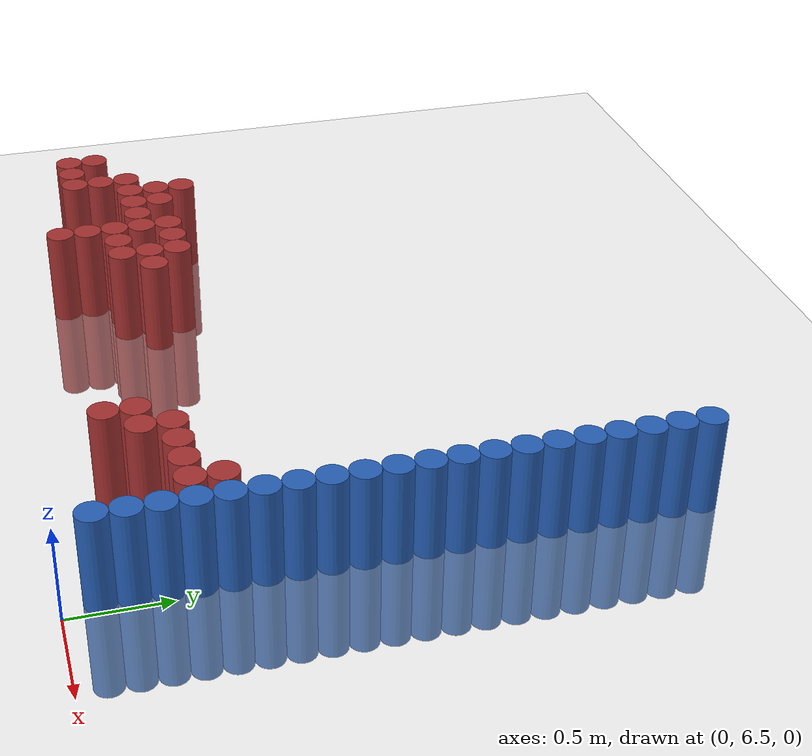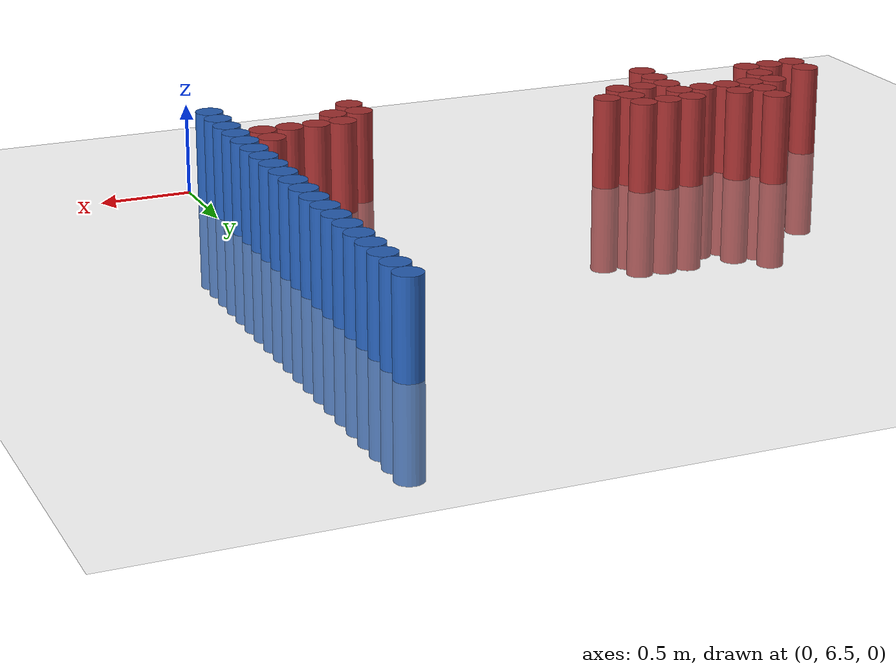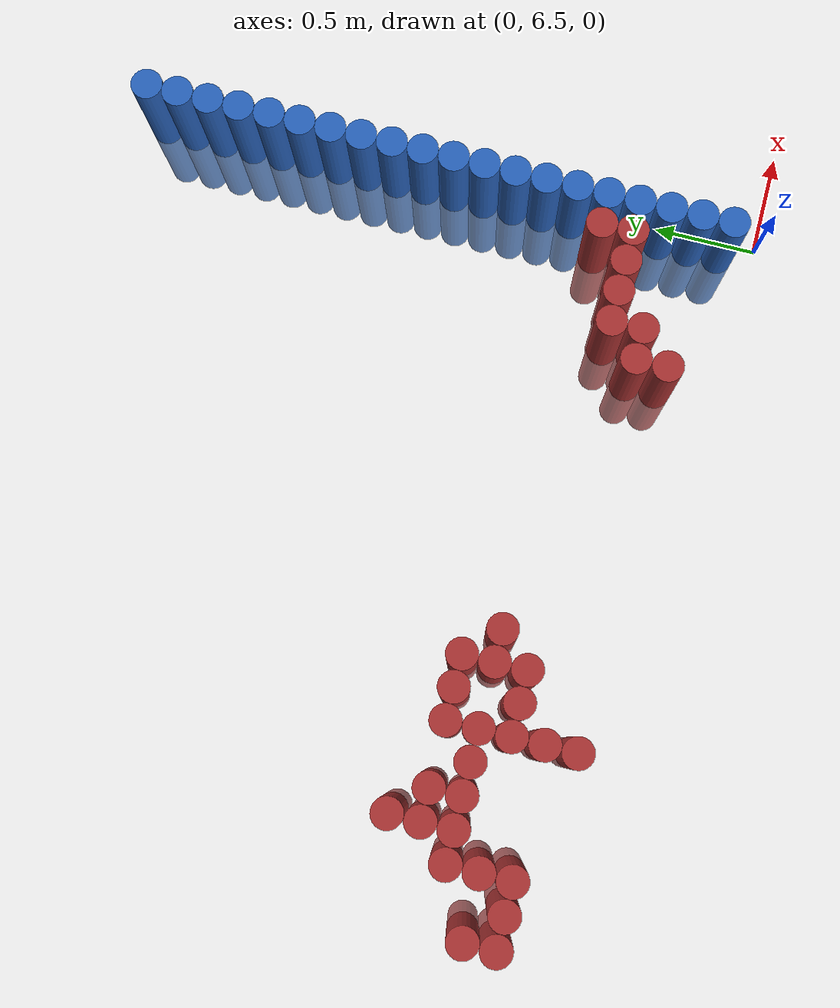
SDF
<sdf version="1.6">
 <world name="default">
  <model name="ground_plane">
   <static>1</static>
   <link name="link">
    <collision name="collision">
     <geometry><plane><normal>0 0 1</normal><size>100 100</size></plane></geometry>
     <surface><friction><ode><mu>100</mu><mu2>50</mu2></ode></friction></surface>
    </collision>
    <visual name="visual">
     <cast_shadows>0</cast_shadows>
     <geometry><plane><normal>0 0 1</normal><size>100 100</size></plane></geometry>
     <material>
      <script><uri>file://media/materials/scripts/gazebo.material</uri><name>Gazebo/Grey</name></script>
     </material>
    </visual>
   </link>
  </model>
  <model name="unit_cylinder_163">
   <static>1</static>
   <pose>-3.525000 6.975000 0.000000 0.000000 0.000000 0.000000</pose>
   <link name="link">
    <inertial>
     <mass>1</mass>
     <inertia><ixx>0.145833</ixx><ixy>0</ixy><ixz>0</ixz><iyy>0.145833</iyy><iyz>0</iyz><izz>0.125</izz></inertia>
    </inertial>
    <collision name="collision">
     <geometry><cylinder><radius>0.075000</radius><length>1</length></cylinder></geometry>
    </collision>
    <visual name="visual">
     <geometry><cylinder><radius>0.075000</radius><length>1</length></cylinder></geometry>
     <material>
      <ambient>0.648000 0.192000 0.192000 1</ambient>
      <diffuse>0.648000 0.192000 0.192000 1</diffuse>
     </material>
     <material>
      <script><name>Gazebo/Grey</name><uri>file://media/materials/scripts/gazebo.material</uri></script>
     </material>
    </visual>
   </link>
  </model>
  <model name="unit_cylinder_164">
   <static>1</static>
   <pose>-3.525000 7.125000 0.000000 0.000000 0.000000 0.000000</pose>
   <link name="link">
    <inertial>
     <mass>1</mass>
     <inertia><ixx>0.145833</ixx><ixy>0</ixy><ixz>0</ixz><iyy>0.145833</iyy><iyz>0</iyz><izz>0.125</izz></inertia>
    </inertial>
    <collision name="collision">
     <geometry><cylinder><radius>0.075000</radius><length>1</length></cylinder></geometry>
    </collision>
    <visual name="visual">
     <geometry><cylinder><radius>0.075000</radius><length>1</length></cylinder></geometry>
     <material>
      <ambient>0.648000 0.192000 0.192000 1</ambient>
      <diffuse>0.648000 0.192000 0.192000 1</diffuse>
     </material>
     <material>
      <script><name>Gazebo/Grey</name><uri>file://media/materials/scripts/gazebo.material</uri></script>
     </material>
    </visual>
   </link>
  </model>
  <model name="unit_cylinder_172">
   <static>1</static>
   <pose>-3.375000 6.975000 0.000000 0.000000 0.000000 0.000000</pose>
   <link name="link">
    <inertial>
     <mass>1</mass>
     <inertia><ixx>0.145833</ixx><ixy>0</ixy><ixz>0</ixz><iyy>0.145833</iyy><iyz>0</iyz><izz>0.125</izz></inertia>
    </inertial>
    <collision name="collision">
     <geometry><cylinder><radius>0.075000</radius><length>1</length></cylinder></geometry>
    </collision>
    <visual name="visual">
     <geometry><cylinder><radius>0.075000</radius><length>1</length></cylinder></geometry>
     <material>
      <ambient>0.648000 0.192000 0.192000 1</ambient>
      <diffuse>0.648000 0.192000 0.192000 1</diffuse>
     </material>
     <material>
      <script><name>Gazebo/Grey</name><uri>file://media/materials/scripts/gazebo.material</uri></script>
     </material>
    </visual>
   </link>
  </model>
  <model name="unit_cylinder_179">
   <static>1</static>
   <pose>-3.225000 6.975000 0.000000 0.000000 0.000000 0.000000</pose>
   <link name="link">
    <inertial>
     <mass>1</mass>
     <inertia><ixx>0.145833</ixx><ixy>0</ixy><ixz>0</ixz><iyy>0.145833</iyy><iyz>0</iyz><izz>0.125</izz></inertia>
    </inertial>
    <collision name="collision">
     <geometry><cylinder><radius>0.075000</radius><length>1</length></cylinder></geometry>
    </collision>
    <visual name="visual">
     <geometry><cylinder><radius>0.075000</radius><length>1</length></cylinder></geometry>
     <material>
      <ambient>0.648000 0.192000 0.192000 1</ambient>
      <diffuse>0.648000 0.192000 0.192000 1</diffuse>
     </material>
     <material>
      <script><name>Gazebo/Grey</name><uri>file://media/materials/scripts/gazebo.material</uri></script>
     </material>
    </visual>
   </link>
  </model>
  <model name="unit_cylinder_180">
   <static>1</static>
   <pose>-3.225000 7.125000 0.000000 0.000000 0.000000 0.000000</pose>
   <link name="link">
    <inertial>
     <mass>1</mass>
     <inertia><ixx>0.145833</ixx><ixy>0</ixy><ixz>0</ixz><iyy>0.145833</iyy><iyz>0</iyz><izz>0.125</izz></inertia>
    </inertial>
    <collision name="collision">
     <geometry><cylinder><radius>0.075000</radius><length>1</length></cylinder></geometry>
    </collision>
    <visual name="visual">
     <geometry><cylinder><radius>0.075000</radius><length>1</length></cylinder></geometry>
     <material>
      <ambient>0.648000 0.192000 0.192000 1</ambient>
      <diffuse>0.648000 0.192000 0.192000 1</diffuse>
     </material>
     <material>
      <script><name>Gazebo/Grey</name><uri>file://media/materials/scripts/gazebo.material</uri></script>
     </material>
    </visual>
   </link>
  </model>
  <model name="unit_cylinder_181">
   <static>1</static>
   <pose>-3.225000 7.275000 0.000000 0.000000 0.000000 0.000000</pose>
   <link name="link">
    <inertial>
     <mass>1</mass>
     <inertia><ixx>0.145833</ixx><ixy>0</ixy><ixz>0</ixz><iyy>0.145833</iyy><iyz>0</iyz><izz>0.125</izz></inertia>
    </inertial>
    <collision name="collision">
     <geometry><cylinder><radius>0.075000</radius><length>1</length></cylinder></geometry>
    </collision>
    <visual name="visual">
     <geometry><cylinder><radius>0.075000</radius><length>1</length></cylinder></geometry>
     <material>
      <ambient>0.648000 0.192000 0.192000 1</ambient>
      <diffuse>0.648000 0.192000 0.192000 1</diffuse>
     </material>
     <material>
      <script><name>Gazebo/Grey</name><uri>file://media/materials/scripts/gazebo.material</uri></script>
     </material>
    </visual>
   </link>
  </model>
  <model name="unit_cylinder_187">
   <static>1</static>
   <pose>-3.075000 7.275000 0.000000 0.000000 0.000000 0.000000</pose>
   <link name="link">
    <inertial>
     <mass>1</mass>
     <inertia><ixx>0.145833</ixx><ixy>0</ixy><ixz>0</ixz><iyy>0.145833</iyy><iyz>0</iyz><izz>0.125</izz></inertia>
    </inertial>
    <collision name="collision">
     <geometry><cylinder><radius>0.075000</radius><length>1</length></cylinder></geometry>
    </collision>
    <visual name="visual">
     <geometry><cylinder><radius>0.075000</radius><length>1</length></cylinder></geometry>
     <material>
      <ambient>0.648000 0.192000 0.192000 1</ambient>
      <diffuse>0.648000 0.192000 0.192000 1</diffuse>
     </material>
     <material>
      <script><name>Gazebo/Grey</name><uri>file://media/materials/scripts/gazebo.material</uri></script>
     </material>
    </visual>
   </link>
  </model>
  <model name="unit_cylinder_188">
   <static>1</static>
   <pose>-3.075000 7.425000 0.000000 0.000000 0.000000 0.000000</pose>
   <link name="link">
    <inertial>
     <mass>1</mass>
     <inertia><ixx>0.145833</ixx><ixy>0</ixy><ixz>0</ixz><iyy>0.145833</iyy><iyz>0</iyz><izz>0.125</izz></inertia>
    </inertial>
    <collision name="collision">
     <geometry><cylinder><radius>0.075000</radius><length>1</length></cylinder></geometry>
    </collision>
    <visual name="visual">
     <geometry><cylinder><radius>0.075000</radius><length>1</length></cylinder></geometry>
     <material>
      <ambient>0.648000 0.192000 0.192000 1</ambient>
      <diffuse>0.648000 0.192000 0.192000 1</diffuse>
     </material>
     <material>
      <script><name>Gazebo/Grey</name><uri>file://media/materials/scripts/gazebo.material</uri></script>
     </material>
    </visual>
   </link>
  </model>
  <model name="unit_cylinder_189">
   <static>1</static>
   <pose>-3.075000 7.575000 0.000000 0.000000 0.000000 0.000000</pose>
   <link name="link">
    <inertial>
     <mass>1</mass>
     <inertia><ixx>0.145833</ixx><ixy>0</ixy><ixz>0</ixz><iyy>0.145833</iyy><iyz>0</iyz><izz>0.125</izz></inertia>
    </inertial>
    <collision name="collision">
     <geometry><cylinder><radius>0.075000</radius><length>1</length></cylinder></geometry>
    </collision>
    <visual name="visual">
     <geometry><cylinder><radius>0.075000</radius><length>1</length></cylinder></geometry>
     <material>
      <ambient>0.648000 0.192000 0.192000 1</ambient>
      <diffuse>0.648000 0.192000 0.192000 1</diffuse>
     </material>
     <material>
      <script><name>Gazebo/Grey</name><uri>file://media/materials/scripts/gazebo.material</uri></script>
     </material>
    </visual>
   </link>
  </model>
  <model name="unit_cylinder_197">
   <static>1</static>
   <pose>-2.925000 7.275000 0.000000 0.000000 0.000000 0.000000</pose>
   <link name="link">
    <inertial>
     <mass>1</mass>
     <inertia><ixx>0.145833</ixx><ixy>0</ixy><ixz>0</ixz><iyy>0.145833</iyy><iyz>0</iyz><izz>0.125</izz></inertia>
    </inertial>
    <collision name="collision">
     <geometry><cylinder><radius>0.075000</radius><length>1</length></cylinder></geometry>
    </collision>
    <visual name="visual">
     <geometry><cylinder><radius>0.075000</radius><length>1</length></cylinder></geometry>
     <material>
      <ambient>0.648000 0.192000 0.192000 1</ambient>
      <diffuse>0.648000 0.192000 0.192000 1</diffuse>
     </material>
     <material>
      <script><name>Gazebo/Grey</name><uri>file://media/materials/scripts/gazebo.material</uri></script>
     </material>
    </visual>
   </link>
  </model>
  <model name="unit_cylinder_198">
   <static>1</static>
   <pose>-2.925000 7.425000 0.000000 0.000000 0.000000 0.000000</pose>
   <link name="link">
    <inertial>
     <mass>1</mass>
     <inertia><ixx>0.145833</ixx><ixy>0</ixy><ixz>0</ixz><iyy>0.145833</iyy><iyz>0</iyz><izz>0.125</izz></inertia>
    </inertial>
    <collision name="collision">
     <geometry><cylinder><radius>0.075000</radius><length>1</length></cylinder></geometry>
    </collision>
    <visual name="visual">
     <geometry><cylinder><radius>0.075000</radius><length>1</length></cylinder></geometry>
     <material>
      <ambient>0.648000 0.192000 0.192000 1</ambient>
      <diffuse>0.648000 0.192000 0.192000 1</diffuse>
     </material>
     <material>
      <script><name>Gazebo/Grey</name><uri>file://media/materials/scripts/gazebo.material</uri></script>
     </material>
    </visual>
   </link>
  </model>
  <model name="unit_cylinder_203">
   <static>1</static>
   <pose>-2.775000 7.275000 0.000000 0.000000 0.000000 0.000000</pose>
   <link name="link">
    <inertial>
     <mass>1</mass>
     <inertia><ixx>0.145833</ixx><ixy>0</ixy><ixz>0</ixz><iyy>0.145833</iyy><iyz>0</iyz><izz>0.125</izz></inertia>
    </inertial>
    <collision name="collision">
     <geometry><cylinder><radius>0.075000</radius><length>1</length></cylinder></geometry>
    </collision>
    <visual name="visual">
     <geometry><cylinder><radius>0.075000</radius><length>1</length></cylinder></geometry>
     <material>
      <ambient>0.648000 0.192000 0.192000 1</ambient>
      <diffuse>0.648000 0.192000 0.192000 1</diffuse>
     </material>
     <material>
      <script><name>Gazebo/Grey</name><uri>file://media/materials/scripts/gazebo.material</uri></script>
     </material>
    </visual>
   </link>
  </model>
  <model name="unit_cylinder_207">
   <static>1</static>
   <pose>-2.625000 6.825000 0.000000 0.000000 0.000000 0.000000</pose>
   <link name="link">
    <inertial>
     <mass>1</mass>
     <inertia><ixx>0.145833</ixx><ixy>0</ixy><ixz>0</ixz><iyy>0.145833</iyy><iyz>0</iyz><izz>0.125</izz></inertia>
    </inertial>
    <collision name="collision">
     <geometry><cylinder><radius>0.075000</radius><length>1</length></cylinder></geometry>
    </collision>
    <visual name="visual">
     <geometry><cylinder><radius>0.075000</radius><length>1</length></cylinder></geometry>
     <material>
      <ambient>0.648000 0.192000 0.192000 1</ambient>
      <diffuse>0.648000 0.192000 0.192000 1</diffuse>
     </material>
     <material>
      <script><name>Gazebo/Grey</name><uri>file://media/materials/scripts/gazebo.material</uri></script>
     </material>
    </visual>
   </link>
  </model>
  <model name="unit_cylinder_208">
   <static>1</static>
   <pose>-2.625000 6.975000 0.000000 0.000000 0.000000 0.000000</pose>
   <link name="link">
    <inertial>
     <mass>1</mass>
     <inertia><ixx>0.145833</ixx><ixy>0</ixy><ixz>0</ixz><iyy>0.145833</iyy><iyz>0</iyz><izz>0.125</izz></inertia>
    </inertial>
    <collision name="collision">
     <geometry><cylinder><radius>0.075000</radius><length>1</length></cylinder></geometry>
    </collision>
    <visual name="visual">
     <geometry><cylinder><radius>0.075000</radius><length>1</length></cylinder></geometry>
     <material>
      <ambient>0.648000 0.192000 0.192000 1</ambient>
      <diffuse>0.648000 0.192000 0.192000 1</diffuse>
     </material>
     <material>
      <script><name>Gazebo/Grey</name><uri>file://media/materials/scripts/gazebo.material</uri></script>
     </material>
    </visual>
   </link>
  </model>
  <model name="unit_cylinder_209">
   <static>1</static>
   <pose>-2.625000 7.125000 0.000000 0.000000 0.000000 0.000000</pose>
   <link name="link">
    <inertial>
     <mass>1</mass>
     <inertia><ixx>0.145833</ixx><ixy>0</ixy><ixz>0</ixz><iyy>0.145833</iyy><iyz>0</iyz><izz>0.125</izz></inertia>
    </inertial>
    <collision name="collision">
     <geometry><cylinder><radius>0.075000</radius><length>1</length></cylinder></geometry>
    </collision>
    <visual name="visual">
     <geometry><cylinder><radius>0.075000</radius><length>1</length></cylinder></geometry>
     <material>
      <ambient>0.648000 0.192000 0.192000 1</ambient>
      <diffuse>0.648000 0.192000 0.192000 1</diffuse>
     </material>
     <material>
      <script><name>Gazebo/Grey</name><uri>file://media/materials/scripts/gazebo.material</uri></script>
     </material>
    </visual>
   </link>
  </model>
  <model name="unit_cylinder_210">
   <static>1</static>
   <pose>-2.625000 7.275000 0.000000 0.000000 0.000000 0.000000</pose>
   <link name="link">
    <inertial>
     <mass>1</mass>
     <inertia><ixx>0.145833</ixx><ixy>0</ixy><ixz>0</ixz><iyy>0.145833</iyy><iyz>0</iyz><izz>0.125</izz></inertia>
    </inertial>
    <collision name="collision">
     <geometry><cylinder><radius>0.075000</radius><length>1</length></cylinder></geometry>
    </collision>
    <visual name="visual">
     <geometry><cylinder><radius>0.075000</radius><length>1</length></cylinder></geometry>
     <material>
      <ambient>0.648000 0.192000 0.192000 1</ambient>
      <diffuse>0.648000 0.192000 0.192000 1</diffuse>
     </material>
     <material>
      <script><name>Gazebo/Grey</name><uri>file://media/materials/scripts/gazebo.material</uri></script>
     </material>
    </visual>
   </link>
  </model>
  <model name="unit_cylinder_211">
   <static>1</static>
   <pose>-2.625000 7.425000 0.000000 0.000000 0.000000 0.000000</pose>
   <link name="link">
    <inertial>
     <mass>1</mass>
     <inertia><ixx>0.145833</ixx><ixy>0</ixy><ixz>0</ixz><iyy>0.145833</iyy><iyz>0</iyz><izz>0.125</izz></inertia>
    </inertial>
    <collision name="collision">
     <geometry><cylinder><radius>0.075000</radius><length>1</length></cylinder></geometry>
    </collision>
    <visual name="visual">
     <geometry><cylinder><radius>0.075000</radius><length>1</length></cylinder></geometry>
     <material>
      <ambient>0.648000 0.192000 0.192000 1</ambient>
      <diffuse>0.648000 0.192000 0.192000 1</diffuse>
     </material>
     <material>
      <script><name>Gazebo/Grey</name><uri>file://media/materials/scripts/gazebo.material</uri></script>
     </material>
    </visual>
   </link>
  </model>
  <model name="unit_cylinder_218">
   <static>1</static>
   <pose>-2.475000 7.125000 0.000000 0.000000 0.000000 0.000000</pose>
   <link name="link">
    <inertial>
     <mass>1</mass>
     <inertia><ixx>0.145833</ixx><ixy>0</ixy><ixz>0</ixz><iyy>0.145833</iyy><iyz>0</iyz><izz>0.125</izz></inertia>
    </inertial>
    <collision name="collision">
     <geometry><cylinder><radius>0.075000</radius><length>1</length></cylinder></geometry>
    </collision>
    <visual name="visual">
     <geometry><cylinder><radius>0.075000</radius><length>1</length></cylinder></geometry>
     <material>
      <ambient>0.648000 0.192000 0.192000 1</ambient>
      <diffuse>0.648000 0.192000 0.192000 1</diffuse>
     </material>
     <material>
      <script><name>Gazebo/Grey</name><uri>file://media/materials/scripts/gazebo.material</uri></script>
     </material>
    </visual>
   </link>
  </model>
  <model name="unit_cylinder_219">
   <static>1</static>
   <pose>-2.475000 7.425000 0.000000 0.000000 0.000000 0.000000</pose>
   <link name="link">
    <inertial>
     <mass>1</mass>
     <inertia><ixx>0.145833</ixx><ixy>0</ixy><ixz>0</ixz><iyy>0.145833</iyy><iyz>0</iyz><izz>0.125</izz></inertia>
    </inertial>
    <collision name="collision">
     <geometry><cylinder><radius>0.075000</radius><length>1</length></cylinder></geometry>
    </collision>
    <visual name="visual">
     <geometry><cylinder><radius>0.075000</radius><length>1</length></cylinder></geometry>
     <material>
      <ambient>0.648000 0.192000 0.192000 1</ambient>
      <diffuse>0.648000 0.192000 0.192000 1</diffuse>
     </material>
     <material>
      <script><name>Gazebo/Grey</name><uri>file://media/materials/scripts/gazebo.material</uri></script>
     </material>
    </visual>
   </link>
  </model>
  <model name="unit_cylinder_225">
   <static>1</static>
   <pose>-2.325000 7.125000 0.000000 0.000000 0.000000 0.000000</pose>
   <link name="link">
    <inertial>
     <mass>1</mass>
     <inertia><ixx>0.145833</ixx><ixy>0</ixy><ixz>0</ixz><iyy>0.145833</iyy><iyz>0</iyz><izz>0.125</izz></inertia>
    </inertial>
    <collision name="collision">
     <geometry><cylinder><radius>0.075000</radius><length>1</length></cylinder></geometry>
    </collision>
    <visual name="visual">
     <geometry><cylinder><radius>0.075000</radius><length>1</length></cylinder></geometry>
     <material>
      <ambient>0.648000 0.192000 0.192000 1</ambient>
      <diffuse>0.648000 0.192000 0.192000 1</diffuse>
     </material>
     <material>
      <script><name>Gazebo/Grey</name><uri>file://media/materials/scripts/gazebo.material</uri></script>
     </material>
    </visual>
   </link>
  </model>
  <model name="unit_cylinder_226">
   <static>1</static>
   <pose>-2.325000 7.275000 0.000000 0.000000 0.000000 0.000000</pose>
   <link name="link">
    <inertial>
     <mass>1</mass>
     <inertia><ixx>0.145833</ixx><ixy>0</ixy><ixz>0</ixz><iyy>0.145833</iyy><iyz>0</iyz><izz>0.125</izz></inertia>
    </inertial>
    <collision name="collision">
     <geometry><cylinder><radius>0.075000</radius><length>1</length></cylinder></geometry>
    </collision>
    <visual name="visual">
     <geometry><cylinder><radius>0.075000</radius><length>1</length></cylinder></geometry>
     <material>
      <ambient>0.648000 0.192000 0.192000 1</ambient>
      <diffuse>0.648000 0.192000 0.192000 1</diffuse>
     </material>
     <material>
      <script><name>Gazebo/Grey</name><uri>file://media/materials/scripts/gazebo.material</uri></script>
     </material>
    </visual>
   </link>
  </model>
  <model name="unit_cylinder_227">
   <static>1</static>
   <pose>-2.325000 7.425000 0.000000 0.000000 0.000000 0.000000</pose>
   <link name="link">
    <inertial>
     <mass>1</mass>
     <inertia><ixx>0.145833</ixx><ixy>0</ixy><ixz>0</ixz><iyy>0.145833</iyy><iyz>0</iyz><izz>0.125</izz></inertia>
    </inertial>
    <collision name="collision">
     <geometry><cylinder><radius>0.075000</radius><length>1</length></cylinder></geometry>
    </collision>
    <visual name="visual">
     <geometry><cylinder><radius>0.075000</radius><length>1</length></cylinder></geometry>
     <material>
      <ambient>0.648000 0.192000 0.192000 1</ambient>
      <diffuse>0.648000 0.192000 0.192000 1</diffuse>
     </material>
     <material>
      <script><name>Gazebo/Grey</name><uri>file://media/materials/scripts/gazebo.material</uri></script>
     </material>
    </visual>
   </link>
  </model>
  <model name="unit_cylinder_228">
   <static>1</static>
   <pose>-2.175000 7.275000 0.000000 0.000000 0.000000 0.000000</pose>
   <link name="link">
    <inertial>
     <mass>1</mass>
     <inertia><ixx>0.145833</ixx><ixy>0</ixy><ixz>0</ixz><iyy>0.145833</iyy><iyz>0</iyz><izz>0.125</izz></inertia>
    </inertial>
    <collision name="collision">
     <geometry><cylinder><radius>0.075000</radius><length>1</length></cylinder></geometry>
    </collision>
    <visual name="visual">
     <geometry><cylinder><radius>0.075000</radius><length>1</length></cylinder></geometry>
     <material>
      <ambient>0.648000 0.192000 0.192000 1</ambient>
      <diffuse>0.648000 0.192000 0.192000 1</diffuse>
     </material>
     <material>
      <script><name>Gazebo/Grey</name><uri>file://media/materials/scripts/gazebo.material</uri></script>
     </material>
    </visual>
   </link>
  </model>
  <model name="unit_cylinder_255">
   <static>1</static>
   <pose>-0.825000 6.825000 0.000000 0.000000 0.000000 0.000000</pose>
   <link name="link">
    <inertial>
     <mass>1</mass>
     <inertia><ixx>0.145833</ixx><ixy>0</ixy><ixz>0</ixz><iyy>0.145833</iyy><iyz>0</iyz><izz>0.125</izz></inertia>
    </inertial>
    <collision name="collision">
     <geometry><cylinder><radius>0.075000</radius><length>1</length></cylinder></geometry>
    </collision>
    <visual name="visual">
     <geometry><cylinder><radius>0.075000</radius><length>1</length></cylinder></geometry>
     <material>
      <ambient>0.648000 0.192000 0.192000 1</ambient>
      <diffuse>0.648000 0.192000 0.192000 1</diffuse>
     </material>
     <material>
      <script><name>Gazebo/Grey</name><uri>file://media/materials/scripts/gazebo.material</uri></script>
     </material>
    </visual>
   </link>
  </model>
  <model name="unit_cylinder_256">
   <static>1</static>
   <pose>-0.825000 6.975000 0.000000 0.000000 0.000000 0.000000</pose>
   <link name="link">
    <inertial>
     <mass>1</mass>
     <inertia><ixx>0.145833</ixx><ixy>0</ixy><ixz>0</ixz><iyy>0.145833</iyy><iyz>0</iyz><izz>0.125</izz></inertia>
    </inertial>
    <collision name="collision">
     <geometry><cylinder><radius>0.075000</radius><length>1</length></cylinder></geometry>
    </collision>
    <visual name="visual">
     <geometry><cylinder><radius>0.075000</radius><length>1</length></cylinder></geometry>
     <material>
      <ambient>0.648000 0.192000 0.192000 1</ambient>
      <diffuse>0.648000 0.192000 0.192000 1</diffuse>
     </material>
     <material>
      <script><name>Gazebo/Grey</name><uri>file://media/materials/scripts/gazebo.material</uri></script>
     </material>
    </visual>
   </link>
  </model>
  <model name="unit_cylinder_260">
   <static>1</static>
   <pose>-0.675000 6.975000 0.000000 0.000000 0.000000 0.000000</pose>
   <link name="link">
    <inertial>
     <mass>1</mass>
     <inertia><ixx>0.145833</ixx><ixy>0</ixy><ixz>0</ixz><iyy>0.145833</iyy><iyz>0</iyz><izz>0.125</izz></inertia>
    </inertial>
    <collision name="collision">
     <geometry><cylinder><radius>0.075000</radius><length>1</length></cylinder></geometry>
    </collision>
    <visual name="visual">
     <geometry><cylinder><radius>0.075000</radius><length>1</length></cylinder></geometry>
     <material>
      <ambient>0.648000 0.192000 0.192000 1</ambient>
      <diffuse>0.648000 0.192000 0.192000 1</diffuse>
     </material>
     <material>
      <script><name>Gazebo/Grey</name><uri>file://media/materials/scripts/gazebo.material</uri></script>
     </material>
    </visual>
   </link>
  </model>
  <model name="unit_cylinder_261">
   <static>1</static>
   <pose>-0.675000 7.125000 0.000000 0.000000 0.000000 0.000000</pose>
   <link name="link">
    <inertial>
     <mass>1</mass>
     <inertia><ixx>0.145833</ixx><ixy>0</ixy><ixz>0</ixz><iyy>0.145833</iyy><iyz>0</iyz><izz>0.125</izz></inertia>
    </inertial>
    <collision name="collision">
     <geometry><cylinder><radius>0.075000</radius><length>1</length></cylinder></geometry>
    </collision>
    <visual name="visual">
     <geometry><cylinder><radius>0.075000</radius><length>1</length></cylinder></geometry>
     <material>
      <ambient>0.648000 0.192000 0.192000 1</ambient>
      <diffuse>0.648000 0.192000 0.192000 1</diffuse>
     </material>
     <material>
      <script><name>Gazebo/Grey</name><uri>file://media/materials/scripts/gazebo.material</uri></script>
     </material>
    </visual>
   </link>
  </model>
  <model name="unit_cylinder_266">
   <static>1</static>
   <pose>-0.525000 7.125000 0.000000 0.000000 0.000000 0.000000</pose>
   <link name="link">
    <inertial>
     <mass>1</mass>
     <inertia><ixx>0.145833</ixx><ixy>0</ixy><ixz>0</ixz><iyy>0.145833</iyy><iyz>0</iyz><izz>0.125</izz></inertia>
    </inertial>
    <collision name="collision">
     <geometry><cylinder><radius>0.075000</radius><length>1</length></cylinder></geometry>
    </collision>
    <visual name="visual">
     <geometry><cylinder><radius>0.075000</radius><length>1</length></cylinder></geometry>
     <material>
      <ambient>0.648000 0.192000 0.192000 1</ambient>
      <diffuse>0.648000 0.192000 0.192000 1</diffuse>
     </material>
     <material>
      <script><name>Gazebo/Grey</name><uri>file://media/materials/scripts/gazebo.material</uri></script>
     </material>
    </visual>
   </link>
  </model>
  <model name="unit_cylinder_268">
   <static>1</static>
   <pose>-0.375000 7.125000 0.000000 0.000000 0.000000 0.000000</pose>
   <link name="link">
    <inertial>
     <mass>1</mass>
     <inertia><ixx>0.145833</ixx><ixy>0</ixy><ixz>0</ixz><iyy>0.145833</iyy><iyz>0</iyz><izz>0.125</izz></inertia>
    </inertial>
    <collision name="collision">
     <geometry><cylinder><radius>0.075000</radius><length>1</length></cylinder></geometry>
    </collision>
    <visual name="visual">
     <geometry><cylinder><radius>0.075000</radius><length>1</length></cylinder></geometry>
     <material>
      <ambient>0.648000 0.192000 0.192000 1</ambient>
      <diffuse>0.648000 0.192000 0.192000 1</diffuse>
     </material>
     <material>
      <script><name>Gazebo/Grey</name><uri>file://media/materials/scripts/gazebo.material</uri></script>
     </material>
    </visual>
   </link>
  </model>
  <model name="unit_cylinder_270">
   <static>1</static>
   <pose>-0.225000 7.125000 0.000000 0.000000 0.000000 0.000000</pose>
   <link name="link">
    <inertial>
     <mass>1</mass>
     <inertia><ixx>0.145833</ixx><ixy>0</ixy><ixz>0</ixz><iyy>0.145833</iyy><iyz>0</iyz><izz>0.125</izz></inertia>
    </inertial>
    <collision name="collision">
     <geometry><cylinder><radius>0.075000</radius><length>1</length></cylinder></geometry>
    </collision>
    <visual name="visual">
     <geometry><cylinder><radius>0.075000</radius><length>1</length></cylinder></geometry>
     <material>
      <ambient>0.648000 0.192000 0.192000 1</ambient>
      <diffuse>0.648000 0.192000 0.192000 1</diffuse>
     </material>
     <material>
      <script><name>Gazebo/Grey</name><uri>file://media/materials/scripts/gazebo.material</uri></script>
     </material>
    </visual>
   </link>
  </model>
  <model name="unit_cylinder_271">
   <static>1</static>
   <pose>-0.225000 7.275000 0.000000 0.000000 0.000000 0.000000</pose>
   <link name="link">
    <inertial>
     <mass>1</mass>
     <inertia><ixx>0.145833</ixx><ixy>0</ixy><ixz>0</ixz><iyy>0.145833</iyy><iyz>0</iyz><izz>0.125</izz></inertia>
    </inertial>
    <collision name="collision">
     <geometry><cylinder><radius>0.075000</radius><length>1</length></cylinder></geometry>
    </collision>
    <visual name="visual">
     <geometry><cylinder><radius>0.075000</radius><length>1</length></cylinder></geometry>
     <material>
      <ambient>0.648000 0.192000 0.192000 1</ambient>
      <diffuse>0.648000 0.192000 0.192000 1</diffuse>
     </material>
     <material>
      <script><name>Gazebo/Grey</name><uri>file://media/materials/scripts/gazebo.material</uri></script>
     </material>
    </visual>
   </link>
  </model>
  <model name="unit_cylinder_282">
   <static>1</static>
   <pose>-0.075000 6.675000 0.000000 0.000000 0.000000 0.000000</pose>
   <link name="link">
    <inertial>
     <mass>1</mass>
     <inertia><ixx>0.145833</ixx><ixy>0</ixy><ixz>0</ixz><iyy>0.145833</iyy><iyz>0</iyz><izz>0.125</izz></inertia>
    </inertial>
    <collision name="collision">
     <geometry><cylinder><radius>0.075000</radius><length>1</length></cylinder></geometry>
    </collision>
    <visual name="visual">
     <geometry><cylinder><radius>0.075000</radius><length>1</length></cylinder></geometry>
     <material>
      <ambient>0.152000 0.379000 0.720000 1</ambient>
      <diffuse>0.152000 0.379000 0.720000 1</diffuse>
     </material>
     <material>
      <script><name>Gazebo/Grey</name><uri>file://media/materials/scripts/gazebo.material</uri></script>
     </material>
    </visual>
   </link>
  </model>
  <model name="unit_cylinder_283">
   <static>1</static>
   <pose>-0.075000 6.825000 0.000000 0.000000 0.000000 0.000000</pose>
   <link name="link">
    <inertial>
     <mass>1</mass>
     <inertia><ixx>0.145833</ixx><ixy>0</ixy><ixz>0</ixz><iyy>0.145833</iyy><iyz>0</iyz><izz>0.125</izz></inertia>
    </inertial>
    <collision name="collision">
     <geometry><cylinder><radius>0.075000</radius><length>1</length></cylinder></geometry>
    </collision>
    <visual name="visual">
     <geometry><cylinder><radius>0.075000</radius><length>1</length></cylinder></geometry>
     <material>
      <ambient>0.152000 0.379000 0.720000 1</ambient>
      <diffuse>0.152000 0.379000 0.720000 1</diffuse>
     </material>
     <material>
      <script><name>Gazebo/Grey</name><uri>file://media/materials/scripts/gazebo.material</uri></script>
     </material>
    </visual>
   </link>
  </model>
  <model name="unit_cylinder_284">
   <static>1</static>
   <pose>-0.075000 6.975000 0.000000 0.000000 0.000000 0.000000</pose>
   <link name="link">
    <inertial>
     <mass>1</mass>
     <inertia><ixx>0.145833</ixx><ixy>0</ixy><ixz>0</ixz><iyy>0.145833</iyy><iyz>0</iyz><izz>0.125</izz></inertia>
    </inertial>
    <collision name="collision">
     <geometry><cylinder><radius>0.075000</radius><length>1</length></cylinder></geometry>
    </collision>
    <visual name="visual">
     <geometry><cylinder><radius>0.075000</radius><length>1</length></cylinder></geometry>
     <material>
      <ambient>0.152000 0.379000 0.720000 1</ambient>
      <diffuse>0.152000 0.379000 0.720000 1</diffuse>
     </material>
     <material>
      <script><name>Gazebo/Grey</name><uri>file://media/materials/scripts/gazebo.material</uri></script>
     </material>
    </visual>
   </link>
  </model>
  <model name="unit_cylinder_285">
   <static>1</static>
   <pose>-0.075000 7.125000 0.000000 0.000000 0.000000 0.000000</pose>
   <link name="link">
    <inertial>
     <mass>1</mass>
     <inertia><ixx>0.145833</ixx><ixy>0</ixy><ixz>0</ixz><iyy>0.145833</iyy><iyz>0</iyz><izz>0.125</izz></inertia>
    </inertial>
    <collision name="collision">
     <geometry><cylinder><radius>0.075000</radius><length>1</length></cylinder></geometry>
    </collision>
    <visual name="visual">
     <geometry><cylinder><radius>0.075000</radius><length>1</length></cylinder></geometry>
     <material>
      <ambient>0.152000 0.379000 0.720000 1</ambient>
      <diffuse>0.152000 0.379000 0.720000 1</diffuse>
     </material>
     <material>
      <script><name>Gazebo/Grey</name><uri>file://media/materials/scripts/gazebo.material</uri></script>
     </material>
    </visual>
   </link>
  </model>
  <model name="unit_cylinder_286">
   <static>1</static>
   <pose>-0.075000 7.275000 0.000000 0.000000 0.000000 0.000000</pose>
   <link name="link">
    <inertial>
     <mass>1</mass>
     <inertia><ixx>0.145833</ixx><ixy>0</ixy><ixz>0</ixz><iyy>0.145833</iyy><iyz>0</iyz><izz>0.125</izz></inertia>
    </inertial>
    <collision name="collision">
     <geometry><cylinder><radius>0.075000</radius><length>1</length></cylinder></geometry>
    </collision>
    <visual name="visual">
     <geometry><cylinder><radius>0.075000</radius><length>1</length></cylinder></geometry>
     <material>
      <ambient>0.152000 0.379000 0.720000 1</ambient>
      <diffuse>0.152000 0.379000 0.720000 1</diffuse>
     </material>
     <material>
      <script><name>Gazebo/Grey</name><uri>file://media/materials/scripts/gazebo.material</uri></script>
     </material>
    </visual>
   </link>
  </model>
  <model name="unit_cylinder_287">
   <static>1</static>
   <pose>-0.075000 7.425000 0.000000 0.000000 0.000000 0.000000</pose>
   <link name="link">
    <inertial>
     <mass>1</mass>
     <inertia><ixx>0.145833</ixx><ixy>0</ixy><ixz>0</ixz><iyy>0.145833</iyy><iyz>0</iyz><izz>0.125</izz></inertia>
    </inertial>
    <collision name="collision">
     <geometry><cylinder><radius>0.075000</radius><length>1</length></cylinder></geometry>
    </collision>
    <visual name="visual">
     <geometry><cylinder><radius>0.075000</radius><length>1</length></cylinder></geometry>
     <material>
      <ambient>0.152000 0.379000 0.720000 1</ambient>
      <diffuse>0.152000 0.379000 0.720000 1</diffuse>
     </material>
     <material>
      <script><name>Gazebo/Grey</name><uri>file://media/materials/scripts/gazebo.material</uri></script>
     </material>
    </visual>
   </link>
  </model>
  <model name="unit_cylinder_288">
   <static>1</static>
   <pose>-0.075000 7.575000 0.000000 0.000000 0.000000 0.000000</pose>
   <link name="link">
    <inertial>
     <mass>1</mass>
     <inertia><ixx>0.145833</ixx><ixy>0</ixy><ixz>0</ixz><iyy>0.145833</iyy><iyz>0</iyz><izz>0.125</izz></inertia>
    </inertial>
    <collision name="collision">
     <geometry><cylinder><radius>0.075000</radius><length>1</length></cylinder></geometry>
    </collision>
    <visual name="visual">
     <geometry><cylinder><radius>0.075000</radius><length>1</length></cylinder></geometry>
     <material>
      <ambient>0.152000 0.379000 0.720000 1</ambient>
      <diffuse>0.152000 0.379000 0.720000 1</diffuse>
     </material>
     <material>
      <script><name>Gazebo/Grey</name><uri>file://media/materials/scripts/gazebo.material</uri></script>
     </material>
    </visual>
   </link>
  </model>
  <model name="unit_cylinder_289">
   <static>1</static>
   <pose>-0.075000 7.725000 0.000000 0.000000 0.000000 0.000000</pose>
   <link name="link">
    <inertial>
     <mass>1</mass>
     <inertia><ixx>0.145833</ixx><ixy>0</ixy><ixz>0</ixz><iyy>0.145833</iyy><iyz>0</iyz><izz>0.125</izz></inertia>
    </inertial>
    <collision name="collision">
     <geometry><cylinder><radius>0.075000</radius><length>1</length></cylinder></geometry>
    </collision>
    <visual name="visual">
     <geometry><cylinder><radius>0.075000</radius><length>1</length></cylinder></geometry>
     <material>
      <ambient>0.152000 0.379000 0.720000 1</ambient>
      <diffuse>0.152000 0.379000 0.720000 1</diffuse>
     </material>
     <material>
      <script><name>Gazebo/Grey</name><uri>file://media/materials/scripts/gazebo.material</uri></script>
     </material>
    </visual>
   </link>
  </model>
  <model name="unit_cylinder_290">
   <static>1</static>
   <pose>-0.075000 7.875000 0.000000 0.000000 0.000000 0.000000</pose>
   <link name="link">
    <inertial>
     <mass>1</mass>
     <inertia><ixx>0.145833</ixx><ixy>0</ixy><ixz>0</ixz><iyy>0.145833</iyy><iyz>0</iyz><izz>0.125</izz></inertia>
    </inertial>
    <collision name="collision">
     <geometry><cylinder><radius>0.075000</radius><length>1</length></cylinder></geometry>
    </collision>
    <visual name="visual">
     <geometry><cylinder><radius>0.075000</radius><length>1</length></cylinder></geometry>
     <material>
      <ambient>0.152000 0.379000 0.720000 1</ambient>
      <diffuse>0.152000 0.379000 0.720000 1</diffuse>
     </material>
     <material>
      <script><name>Gazebo/Grey</name><uri>file://media/materials/scripts/gazebo.material</uri></script>
     </material>
    </visual>
   </link>
  </model>
  <model name="unit_cylinder_291">
   <static>1</static>
   <pose>-0.075000 8.025000 0.000000 0.000000 0.000000 0.000000</pose>
   <link name="link">
    <inertial>
     <mass>1</mass>
     <inertia><ixx>0.145833</ixx><ixy>0</ixy><ixz>0</ixz><iyy>0.145833</iyy><iyz>0</iyz><izz>0.125</izz></inertia>
    </inertial>
    <collision name="collision">
     <geometry><cylinder><radius>0.075000</radius><length>1</length></cylinder></geometry>
    </collision>
    <visual name="visual">
     <geometry><cylinder><radius>0.075000</radius><length>1</length></cylinder></geometry>
     <material>
      <ambient>0.152000 0.379000 0.720000 1</ambient>
      <diffuse>0.152000 0.379000 0.720000 1</diffuse>
     </material>
     <material>
      <script><name>Gazebo/Grey</name><uri>file://media/materials/scripts/gazebo.material</uri></script>
     </material>
    </visual>
   </link>
  </model>
  <model name="unit_cylinder_292">
   <static>1</static>
   <pose>-0.075000 8.175000 0.000000 0.000000 0.000000 0.000000</pose>
   <link name="link">
    <inertial>
     <mass>1</mass>
     <inertia><ixx>0.145833</ixx><ixy>0</ixy><ixz>0</ixz><iyy>0.145833</iyy><iyz>0</iyz><izz>0.125</izz></inertia>
    </inertial>
    <collision name="collision">
     <geometry><cylinder><radius>0.075000</radius><length>1</length></cylinder></geometry>
    </collision>
    <visual name="visual">
     <geometry><cylinder><radius>0.075000</radius><length>1</length></cylinder></geometry>
     <material>
      <ambient>0.152000 0.379000 0.720000 1</ambient>
      <diffuse>0.152000 0.379000 0.720000 1</diffuse>
     </material>
     <material>
      <script><name>Gazebo/Grey</name><uri>file://media/materials/scripts/gazebo.material</uri></script>
     </material>
    </visual>
   </link>
  </model>
  <model name="unit_cylinder_293">
   <static>1</static>
   <pose>-0.075000 8.325000 0.000000 0.000000 0.000000 0.000000</pose>
   <link name="link">
    <inertial>
     <mass>1</mass>
     <inertia><ixx>0.145833</ixx><ixy>0</ixy><ixz>0</ixz><iyy>0.145833</iyy><iyz>0</iyz><izz>0.125</izz></inertia>
    </inertial>
    <collision name="collision">
     <geometry><cylinder><radius>0.075000</radius><length>1</length></cylinder></geometry>
    </collision>
    <visual name="visual">
     <geometry><cylinder><radius>0.075000</radius><length>1</length></cylinder></geometry>
     <material>
      <ambient>0.152000 0.379000 0.720000 1</ambient>
      <diffuse>0.152000 0.379000 0.720000 1</diffuse>
     </material>
     <material>
      <script><name>Gazebo/Grey</name><uri>file://media/materials/scripts/gazebo.material</uri></script>
     </material>
    </visual>
   </link>
  </model>
  <model name="unit_cylinder_294">
   <static>1</static>
   <pose>-0.075000 8.475000 0.000000 0.000000 0.000000 0.000000</pose>
   <link name="link">
    <inertial>
     <mass>1</mass>
     <inertia><ixx>0.145833</ixx><ixy>0</ixy><ixz>0</ixz><iyy>0.145833</iyy><iyz>0</iyz><izz>0.125</izz></inertia>
    </inertial>
    <collision name="collision">
     <geometry><cylinder><radius>0.075000</radius><length>1</length></cylinder></geometry>
    </collision>
    <visual name="visual">
     <geometry><cylinder><radius>0.075000</radius><length>1</length></cylinder></geometry>
     <material>
      <ambient>0.152000 0.379000 0.720000 1</ambient>
      <diffuse>0.152000 0.379000 0.720000 1</diffuse>
     </material>
     <material>
      <script><name>Gazebo/Grey</name><uri>file://media/materials/scripts/gazebo.material</uri></script>
     </material>
    </visual>
   </link>
  </model>
  <model name="unit_cylinder_295">
   <static>1</static>
   <pose>-0.075000 8.625000 0.000000 0.000000 0.000000 0.000000</pose>
   <link name="link">
    <inertial>
     <mass>1</mass>
     <inertia><ixx>0.145833</ixx><ixy>0</ixy><ixz>0</ixz><iyy>0.145833</iyy><iyz>0</iyz><izz>0.125</izz></inertia>
    </inertial>
    <collision name="collision">
     <geometry><cylinder><radius>0.075000</radius><length>1</length></cylinder></geometry>
    </collision>
    <visual name="visual">
     <geometry><cylinder><radius>0.075000</radius><length>1</length></cylinder></geometry>
     <material>
      <ambient>0.152000 0.379000 0.720000 1</ambient>
      <diffuse>0.152000 0.379000 0.720000 1</diffuse>
     </material>
     <material>
      <script><name>Gazebo/Grey</name><uri>file://media/materials/scripts/gazebo.material</uri></script>
     </material>
    </visual>
   </link>
  </model>
  <model name="unit_cylinder_296">
   <static>1</static>
   <pose>-0.075000 8.775000 0.000000 0.000000 0.000000 0.000000</pose>
   <link name="link">
    <inertial>
     <mass>1</mass>
     <inertia><ixx>0.145833</ixx><ixy>0</ixy><ixz>0</ixz><iyy>0.145833</iyy><iyz>0</iyz><izz>0.125</izz></inertia>
    </inertial>
    <collision name="collision">
     <geometry><cylinder><radius>0.075000</radius><length>1</length></cylinder></geometry>
    </collision>
    <visual name="visual">
     <geometry><cylinder><radius>0.075000</radius><length>1</length></cylinder></geometry>
     <material>
      <ambient>0.152000 0.379000 0.720000 1</ambient>
      <diffuse>0.152000 0.379000 0.720000 1</diffuse>
     </material>
     <material>
      <script><name>Gazebo/Grey</name><uri>file://media/materials/scripts/gazebo.material</uri></script>
     </material>
    </visual>
   </link>
  </model>
  <model name="unit_cylinder_297">
   <static>1</static>
   <pose>-0.075000 8.925000 0.000000 0.000000 0.000000 0.000000</pose>
   <link name="link">
    <inertial>
     <mass>1</mass>
     <inertia><ixx>0.145833</ixx><ixy>0</ixy><ixz>0</ixz><iyy>0.145833</iyy><iyz>0</iyz><izz>0.125</izz></inertia>
    </inertial>
    <collision name="collision">
     <geometry><cylinder><radius>0.075000</radius><length>1</length></cylinder></geometry>
    </collision>
    <visual name="visual">
     <geometry><cylinder><radius>0.075000</radius><length>1</length></cylinder></geometry>
     <material>
      <ambient>0.152000 0.379000 0.720000 1</ambient>
      <diffuse>0.152000 0.379000 0.720000 1</diffuse>
     </material>
     <material>
      <script><name>Gazebo/Grey</name><uri>file://media/materials/scripts/gazebo.material</uri></script>
     </material>
    </visual>
   </link>
  </model>
  <model name="unit_cylinder_298">
   <static>1</static>
   <pose>-0.075000 9.075000 0.000000 0.000000 0.000000 0.000000</pose>
   <link name="link">
    <inertial>
     <mass>1</mass>
     <inertia><ixx>0.145833</ixx><ixy>0</ixy><ixz>0</ixz><iyy>0.145833</iyy><iyz>0</iyz><izz>0.125</izz></inertia>
    </inertial>
    <collision name="collision">
     <geometry><cylinder><radius>0.075000</radius><length>1</length></cylinder></geometry>
    </collision>
    <visual name="visual">
     <geometry><cylinder><radius>0.075000</radius><length>1</length></cylinder></geometry>
     <material>
      <ambient>0.152000 0.379000 0.720000 1</ambient>
      <diffuse>0.152000 0.379000 0.720000 1</diffuse>
     </material>
     <material>
      <script><name>Gazebo/Grey</name><uri>file://media/materials/scripts/gazebo.material</uri></script>
     </material>
    </visual>
   </link>
  </model>
  <model name="unit_cylinder_299">
   <static>1</static>
   <pose>-0.075000 9.225000 0.000000 0.000000 0.000000 0.000000</pose>
   <link name="link">
    <inertial>
     <mass>1</mass>
     <inertia><ixx>0.145833</ixx><ixy>0</ixy><ixz>0</ixz><iyy>0.145833</iyy><iyz>0</iyz><izz>0.125</izz></inertia>
    </inertial>
    <collision name="collision">
     <geometry><cylinder><radius>0.075000</radius><length>1</length></cylinder></geometry>
    </collision>
    <visual name="visual">
     <geometry><cylinder><radius>0.075000</radius><length>1</length></cylinder></geometry>
     <material>
      <ambient>0.152000 0.379000 0.720000 1</ambient>
      <diffuse>0.152000 0.379000 0.720000 1</diffuse>
     </material>
     <material>
      <script><name>Gazebo/Grey</name><uri>file://media/materials/scripts/gazebo.material</uri></script>
     </material>
    </visual>
   </link>
  </model>
  <model name="unit_cylinder_300">
   <static>1</static>
   <pose>-0.075000 9.375000 0.000000 0.000000 0.000000 0.000000</pose>
   <link name="link">
    <inertial>
     <mass>1</mass>
     <inertia><ixx>0.145833</ixx><ixy>0</ixy><ixz>0</ixz><iyy>0.145833</iyy><iyz>0</iyz><izz>0.125</izz></inertia>
    </inertial>
    <collision name="collision">
     <geometry><cylinder><radius>0.075000</radius><length>1</length></cylinder></geometry>
    </collision>
    <visual name="visual">
     <geometry><cylinder><radius>0.075000</radius><length>1</length></cylinder></geometry>
     <material>
      <ambient>0.152000 0.379000 0.720000 1</ambient>
      <diffuse>0.152000 0.379000 0.720000 1</diffuse>
     </material>
     <material>
      <script><name>Gazebo/Grey</name><uri>file://media/materials/scripts/gazebo.material</uri></script>
     </material>
    </visual>
   </link>
  </model>
  <model name="unit_cylinder_301">
   <static>1</static>
   <pose>-0.075000 9.525000 0.000000 0.000000 0.000000 0.000000</pose>
   <link name="link">
    <inertial>
     <mass>1</mass>
     <inertia><ixx>0.145833</ixx><ixy>0</ixy><ixz>0</ixz><iyy>0.145833</iyy><iyz>0</iyz><izz>0.125</izz></inertia>
    </inertial>
    <collision name="collision">
     <geometry><cylinder><radius>0.075000</radius><length>1</length></cylinder></geometry>
    </collision>
    <visual name="visual">
     <geometry><cylinder><radius>0.075000</radius><length>1</length></cylinder></geometry>
     <material>
      <ambient>0.152000 0.379000 0.720000 1</ambient>
      <diffuse>0.152000 0.379000 0.720000 1</diffuse>
     </material>
     <material>
      <script><name>Gazebo/Grey</name><uri>file://media/materials/scripts/gazebo.material</uri></script>
     </material>
    </visual>
   </link>
  </model>
 </world>
</sdf>
